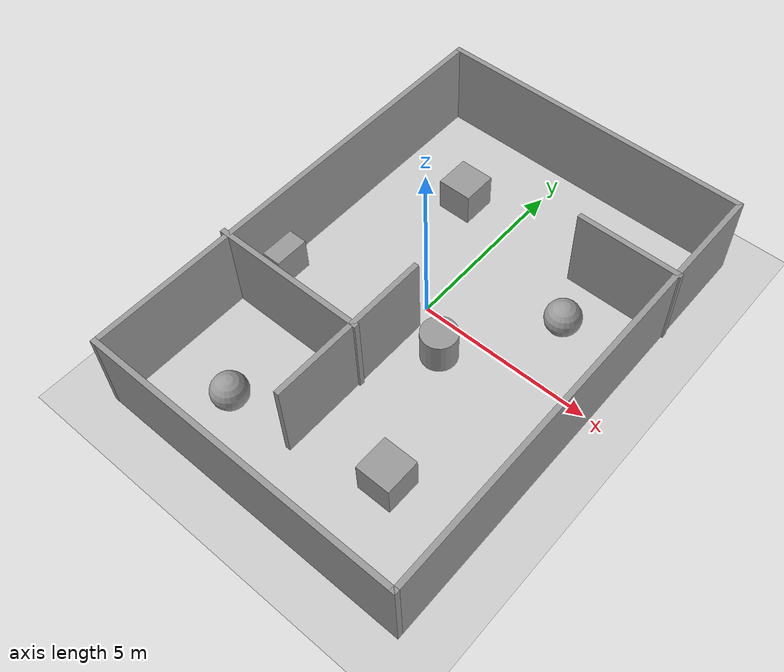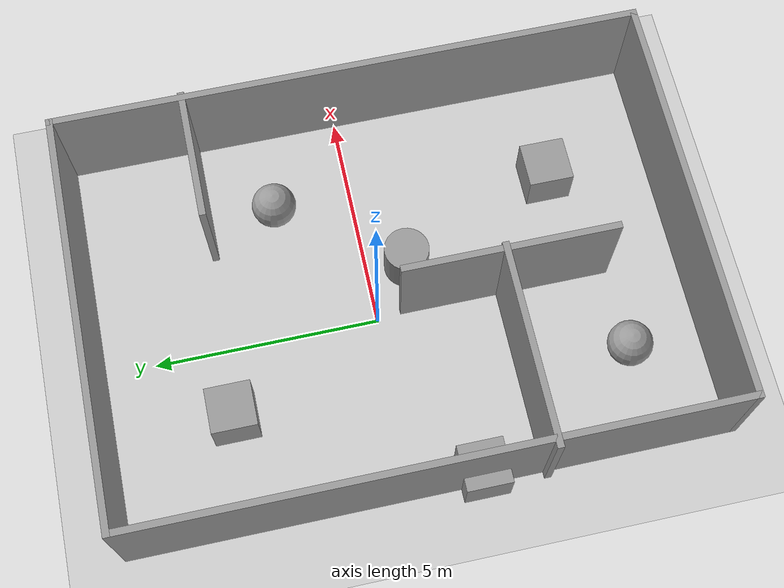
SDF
<sdf version="1.7">
 <world name="default">
  <light name="sun" type="directional">
   <pose>0 0 10 0 0 0</pose>
   <diffuse>0.8 0.8 0.8 1</diffuse>
   <specular>0.2 0.2 0.2 1</specular>
   <attenuation>
    <range>1000</range>
    <constant>0.9</constant>
    <linear>0.01</linear>
    <quadratic>0.001</quadratic>
   </attenuation>
   <direction>-0.5 0.1 -0.9</direction>
   <spot><inner_angle>0</inner_angle><outer_angle>0</outer_angle><falloff>0</falloff></spot>
  </light>
  <model name="ground_plane">
   <static>1</static>
   <link name="link">
    <collision name="collision">
     <geometry><plane><normal>0 0 1</normal><size>100 100</size></plane></geometry>
     <surface><friction><ode><mu>100</mu><mu2>50</mu2></ode></friction></surface>
    </collision>
    <visual name="visual">
     <cast_shadows>0</cast_shadows>
     <geometry><plane><normal>0 0 1</normal><size>100 100</size></plane></geometry>
     <material>
      <script><uri>file://media/materials/scripts/gazebo.material</uri><name>Gazebo/Grey</name></script>
     </material>
    </visual>
   </link>
  </model>
  <gravity>0 0 -9.8</gravity>
  <magnetic_field>6e-06 2.3e-05 -4.2e-05</magnetic_field>
  <atmosphere type="adiabatic"/>
  <physics type="ode">
   <max_step_size>0.01</max_step_size>
   <real_time_factor>0.5</real_time_factor>
   <real_time_update_rate>100</real_time_update_rate>
  </physics>
  <scene><ambient>0.4 0.4 0.4 1</ambient><background>0.7 0.7 0.7 1</background><shadows>1</shadows></scene>
  <spherical_coordinates>
   <surface_model>EARTH_WGS84</surface_model>
   <latitude_deg>0</latitude_deg>
   <longitude_deg>0</longitude_deg>
   <elevation>0</elevation>
   <heading_deg>0</heading_deg>
  </spherical_coordinates>
  <model name="test">
   <pose>0.491539 -0.387682 0 0 0 0</pose>
   <link name="Wall_12">
    <collision name="Wall_12_Collision">
     <geometry><box><size>4.75 0.15 2.5</size></box></geometry>
     <pose>0 0 1.25 0 0 0</pose>
    </collision>
    <visual name="Wall_12_Visual">
     <pose>0 0 1.25 0 0 0</pose>
     <geometry><box><size>4.75 0.15 2.5</size></box></geometry>
     <material>
      <script><uri>file://media/materials/scripts/gazebo.material</uri><name>Gazebo/Grey</name></script>
      <ambient>1 1 1 1</ambient>
     </material>
     <meta><layer>0</layer></meta>
    </visual>
    <pose>-0.352276 -2.50694 0 0 0 -1.5708</pose>
   </link>
   <link name="Wall_14">
    <collision name="Wall_14_Collision">
     <geometry><box><size>3 0.15 2.5</size></box></geometry>
     <pose>0 0 1.25 0 0 0</pose>
    </collision>
    <visual name="Wall_14_Visual">
     <pose>0 0 1.25 0 0 0</pose>
     <geometry><box><size>3 0.15 2.5</size></box></geometry>
     <material>
      <script><uri>file://media/materials/scripts/gazebo.material</uri><name>Gazebo/Grey</name></script>
      <ambient>1 1 1 1</ambient>
     </material>
     <meta><layer>0</layer></meta>
    </visual>
    <pose>3.21817 3.6642 0 0 0 0</pose>
   </link>
   <link name="Wall_3">
    <collision name="Wall_3_Collision">
     <geometry><box><size>13.25 0.15 2.5</size></box></geometry>
     <pose>0 0 1.25 0 0 0</pose>
    </collision>
    <visual name="Wall_3_Visual">
     <pose>0 0 1.25 0 0 0</pose>
     <geometry><box><size>13.25 0.15 2.5</size></box></geometry>
     <material>
      <script><uri>file://media/materials/scripts/gazebo.material</uri><name>Gazebo/Grey</name></script>
      <ambient>1 1 1 1</ambient>
     </material>
     <meta><layer>0</layer></meta>
    </visual>
    <pose>-4.50325 0 0 0 0 1.5708</pose>
   </link>
   <link name="Wall_4">
    <collision name="Wall_4_Collision">
     <geometry><box><size>9.25 0.15 2.5</size></box></geometry>
     <pose>0 0 1.25 0 0 0</pose>
    </collision>
    <visual name="Wall_4_Visual">
     <pose>0 0 1.25 0 0 0</pose>
     <geometry><box><size>9.25 0.15 2.5</size></box></geometry>
     <material>
      <script><uri>file://media/materials/scripts/gazebo.material</uri><name>Gazebo/Grey</name></script>
      <ambient>1 1 1 1</ambient>
     </material>
     <meta><layer>0</layer></meta>
    </visual>
    <pose>0.046749 6.55 0 0 0 0</pose>
   </link>
   <link name="Wall_5">
    <collision name="Wall_5_Collision">
     <geometry><box><size>13.25 0.15 2.5</size></box></geometry>
     <pose>0 0 1.25 0 0 0</pose>
    </collision>
    <visual name="Wall_5_Visual">
     <pose>0 0 1.25 0 0 0</pose>
     <geometry><box><size>13.25 0.15 2.5</size></box></geometry>
     <material>
      <script><uri>file://media/materials/scripts/gazebo.material</uri><name>Gazebo/Grey</name></script>
      <ambient>1 1 1 1</ambient>
     </material>
     <meta><layer>0</layer></meta>
    </visual>
    <pose>4.59675 0 0 0 0 -1.5708</pose>
   </link>
   <link name="Wall_6">
    <collision name="Wall_6_Collision">
     <geometry><box><size>9.25 0.15 2.5</size></box></geometry>
     <pose>0 0 1.25 0 0 0</pose>
    </collision>
    <visual name="Wall_6_Visual">
     <pose>0 0 1.25 0 0 0</pose>
     <geometry><box><size>9.25 0.15 2.5</size></box></geometry>
     <material>
      <script><uri>file://media/materials/scripts/gazebo.material</uri><name>Gazebo/Grey</name></script>
      <ambient>1 1 1 1</ambient>
     </material>
     <meta><layer>0</layer></meta>
    </visual>
    <pose>0.046749 -6.55 0 0 0 3.14159</pose>
   </link>
   <link name="Wall_8">
    <collision name="Wall_8_Collision">
     <geometry><box><size>4.5 0.15 2.5</size></box></geometry>
     <pose>0 0 1.25 0 0 0</pose>
    </collision>
    <visual name="Wall_8_Visual">
     <pose>0 0 1.25 0 0 0</pose>
     <geometry><box><size>4.5 0.15 2.5</size></box></geometry>
     <material>
      <script><uri>file://media/materials/scripts/gazebo.material</uri><name>Gazebo/Grey</name></script>
      <ambient>1 1 1 1</ambient>
     </material>
     <meta><layer>0</layer></meta>
    </visual>
    <pose>-2.46817 -2.39902 0 0 0 0</pose>
   </link>
   <static>1</static>
  </model>
  <model name="unit_box">
   <pose>-1.55527 3.49126 0.499995 -1e-05 0 0</pose>
   <link name="link">
    <inertial>
     <mass>1</mass>
     <inertia>
      <ixx>0.166667</ixx>
      <ixy>0</ixy>
      <ixz>0</ixz>
      <iyy>0.166667</iyy>
      <iyz>0</iyz>
      <izz>0.166667</izz>
     </inertia>
    </inertial>
    <collision name="collision"><geometry><box><size>1 1 1</size></box></geometry></collision>
    <visual name="visual">
     <geometry><box><size>1 1 1</size></box></geometry>
     <material>
      <script><name>Gazebo/Grey</name><uri>file://media/materials/scripts/gazebo.material</uri></script>
     </material>
    </visual>
   </link>
  </model>
  <model name="unit_box_0">
   <pose>2.59494 -4.44364 0.5 0 0 0</pose>
   <link name="link">
    <inertial>
     <mass>1</mass>
     <inertia>
      <ixx>0.166667</ixx>
      <ixy>0</ixy>
      <ixz>0</ixz>
      <iyy>0.166667</iyy>
      <iyz>0</iyz>
      <izz>0.166667</izz>
     </inertia>
    </inertial>
    <collision name="collision"><geometry><box><size>1 1 1</size></box></geometry></collision>
    <visual name="visual">
     <geometry><box><size>1 1 1</size></box></geometry>
     <material>
      <script><name>Gazebo/Grey</name><uri>file://media/materials/scripts/gazebo.material</uri></script>
     </material>
    </visual>
   </link>
  </model>
  <model name="unit_sphere">
   <pose>-1.82466 -5.21483 0.5 0 0 0</pose>
   <link name="link">
    <inertial>
     <mass>1</mass>
     <inertia><ixx>0.1</ixx><ixy>0</ixy><ixz>0</ixz><iyy>0.1</iyy><iyz>0</iyz><izz>0.1</izz></inertia>
    </inertial>
    <collision name="collision"><geometry><sphere><radius>0.5</radius></sphere></geometry></collision>
    <visual name="visual">
     <geometry><sphere><radius>0.5</radius></sphere></geometry>
     <material>
      <script><name>Gazebo/Grey</name><uri>file://media/materials/scripts/gazebo.material</uri></script>
     </material>
    </visual>
   </link>
  </model>
  <model name="unit_sphere_0">
   <pose>3.05984 1.75906 0.5 0 0 0</pose>
   <link name="link">
    <inertial>
     <mass>1</mass>
     <inertia><ixx>0.1</ixx><ixy>0</ixy><ixz>0</ixz><iyy>0.1</iyy><iyz>0</iyz><izz>0.1</izz></inertia>
    </inertial>
    <collision name="collision"><geometry><sphere><radius>0.5</radius></sphere></geometry></collision>
    <visual name="visual">
     <geometry><sphere><radius>0.5</radius></sphere></geometry>
     <material>
      <script><name>Gazebo/Grey</name><uri>file://media/materials/scripts/gazebo.material</uri></script>
     </material>
    </visual>
   </link>
  </model>
  <model name="unit_cylinder">
   <pose>1.17206 -0.896677 0.5 0 0 0</pose>
   <link name="link">
    <inertial>
     <mass>1</mass>
     <inertia><ixx>0.145833</ixx><ixy>0</ixy><ixz>0</ixz><iyy>0.145833</iyy><iyz>0</iyz><izz>0.125</izz></inertia>
    </inertial>
    <collision name="collision">
     <geometry><cylinder><radius>0.5</radius><length>1</length></cylinder></geometry>
    </collision>
    <visual name="visual">
     <geometry><cylinder><radius>0.5</radius><length>1</length></cylinder></geometry>
     <material>
      <script><name>Gazebo/Grey</name><uri>file://media/materials/scripts/gazebo.material</uri></script>
     </material>
    </visual>
   </link>
  </model>
  <model name="unit_box_1">
   <pose>-3.87841 -1.43603 0.5 0 0 0</pose>
   <link name="link">
    <inertial>
     <mass>1</mass>
     <inertia>
      <ixx>0.166667</ixx>
      <ixy>0</ixy>
      <ixz>0</ixz>
      <iyy>0.166667</iyy>
      <iyz>0</iyz>
      <izz>0.166667</izz>
     </inertia>
    </inertial>
    <collision name="collision"><geometry><box><size>1 1 1</size></box></geometry></collision>
    <visual name="visual">
     <geometry><box><size>1 1 1</size></box></geometry>
     <material>
      <script><name>Gazebo/Grey</name><uri>file://media/materials/scripts/gazebo.material</uri></script>
     </material>
    </visual>
   </link>
  </model>
 </world>
</sdf>
